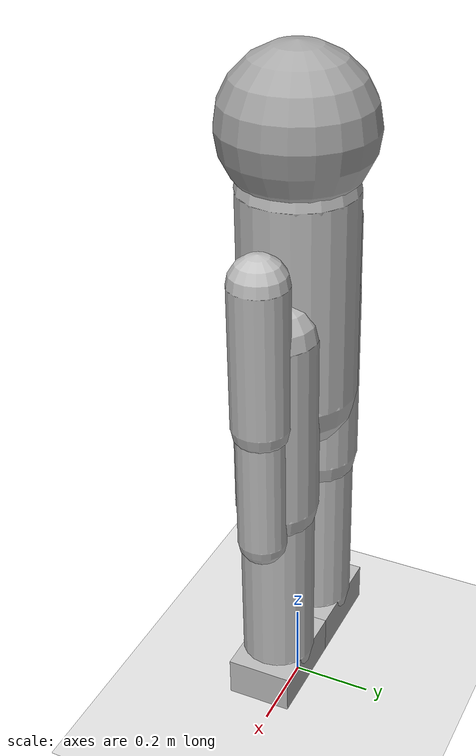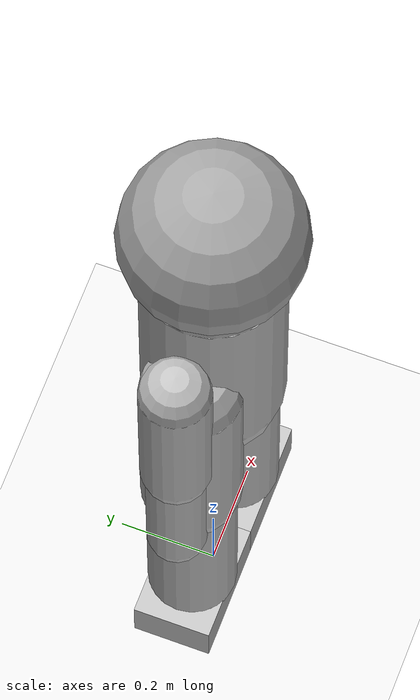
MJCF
<mujoco model="humanoid">
  <option timestep="0.005" gravity="0 0 -9.81"/>
  <default>
    <joint armature="0.1" damping="10" limited="true"/>
    <geom conaffinity="0" condim="3" friction="15 0.1 0.1" rgba="0.75 0.75 0.75 1"/>
  </default>

  <worldbody>
    <light pos="0 0 4" dir="0 0 -1" diffuse="1 1 1"/>
    <geom name="floor" type="plane" size="15 15 0.1" rgba="0.9 0.9 0.9 1"/>

    <!-- 关键：把整体高度压低，让脚掌强制压在地面上 -->
    <body name="torso" pos="0 0 0.9">
      <joint type="free"/>
      <geom type="capsule" size="0.14 0.30" fromto="0 0 0 0 0 0.50"/>

      <body name="neck" pos="0 0 0.50">
        <joint name="neck_yaw" type="hinge" axis="0 0 1" range="-35 35"/>
        <geom type="capsule" size="0.08 0.10" fromto="0 0 0 0 0 0.14"/>
        <body name="head" pos="0 0 0.14">
          <geom type="sphere" size="0.18" rgba="0.65 0.65 0.65 1"/>
        </body>
      </body>

      <body name="r_arm" pos="-0.20 0 0.36">
        <joint name="r_shoulder" type="hinge" axis="0 1 0" range="-60 60"/>
        <geom type="capsule" size="0.07 0.25" fromto="0 0 0 0 0 -0.35"/>
        <body name="r_forearm" pos="0 0 -0.35">
          <joint name="r_elbow" type="hinge" axis="0 1 0" range="0 90"/>
          <geom type="capsule" size="0.06 0.23" fromto="0 0 0 0 0 -0.32"/>
        </body>
      </body>

      <body name="l_arm" pos="0.20 0 0.36">
        <joint name="l_shoulder" type="hinge" axis="0 1 0" range="-60 60"/>
        <geom type="capsule" size="0.07 0.25" fromto="0 0 0 0 0 -0.35"/>
        <body name="l_forearm" pos="0 0 -0.35">
          <joint name="l_elbow" type="hinge" axis="0 1 0" range="0 90"/>
          <geom type="capsule" size="0.06 0.23" fromto="0 0 0 0 0 -0.32"/>
        </body>
      </body>

      <body name="r_leg" pos="-0.12 0 0.20">
        <joint name="r_hip" type="hinge" axis="0 1 0" range="-45 45"/>
        <geom type="capsule" size="0.10 0.32" fromto="0 0 0 0 0 -0.45"/>
        <body pos="0 0 -0.45">
          <joint name="r_knee" type="hinge" axis="0 1 0" range="-90 0"/>
          <geom type="capsule" size="0.09 0.32" fromto="0 0 0 0 0 -0.45"/>
          <body pos="0 0 -0.45">
            <joint name="r_ankle" type="hinge" axis="0 1 0" range="-30 30"/>
            <geom type="box" size="0.12 0.08 0.05" pos="0 0 -0.05"/>
          </body>
        </body>
      </body>

      <body name="l_leg" pos="0.12 0 0.20">
        <joint name="l_hip" type="hinge" axis="0 1 0" range="-45 45"/>
        <geom type="capsule" size="0.10 0.32" fromto="0 0 0 0 0 -0.45"/>
        <body pos="0 0 -0.45">
          <joint name="l_knee" type="hinge" axis="0 1 0" range="-90 0"/>
          <geom type="capsule" size="0.09 0.32" fromto="0 0 0 0 0 -0.45"/>
          <body pos="0 0 -0.45">
            <joint name="l_ankle" type="hinge" axis="0 1 0" range="-30 30"/>
            <geom type="box" size="0.12 0.08 0.05" pos="0 0 -0.05"/>
          </body>
        </body>
      </body>
    </body>
  </worldbody>

  <actuator>
    <motor joint="neck_yaw" gear="90"/>
    <motor joint="r_shoulder" gear="75"/>
    <motor joint="r_elbow" gear="65"/>
    <motor joint="l_shoulder" gear="75"/>
    <motor joint="l_elbow" gear="65"/>
    <motor joint="r_hip" gear="80"/>
    <motor joint="r_knee" gear="70"/>
    <motor joint="r_ankle" gear="60"/>
    <motor joint="l_hip" gear="80"/>
    <motor joint="l_knee" gear="70"/>
    <motor joint="l_ankle" gear="60"/>
  </actuator>
</mujoco>
